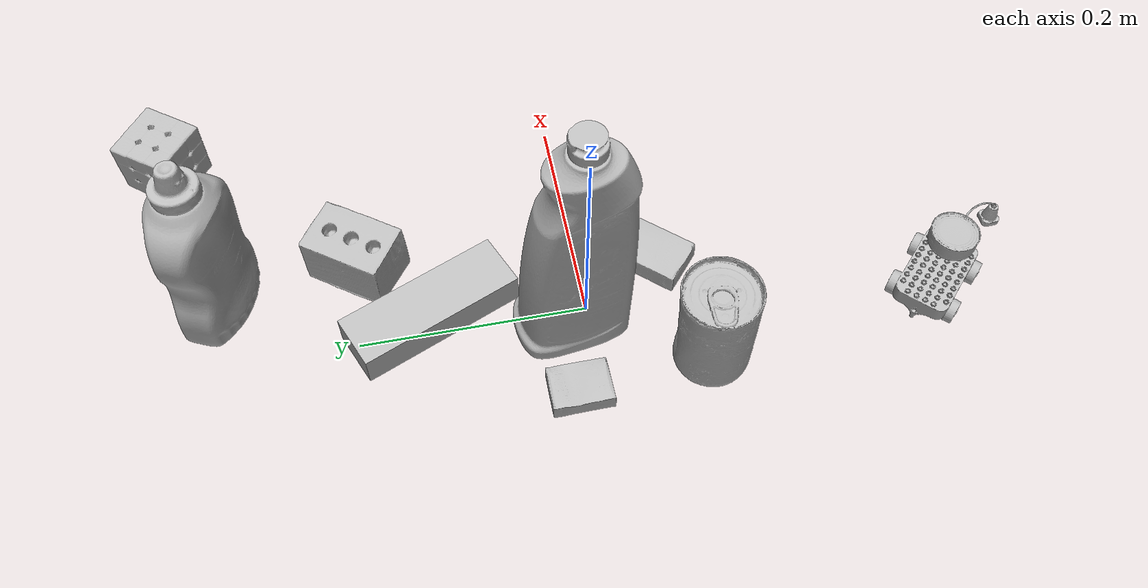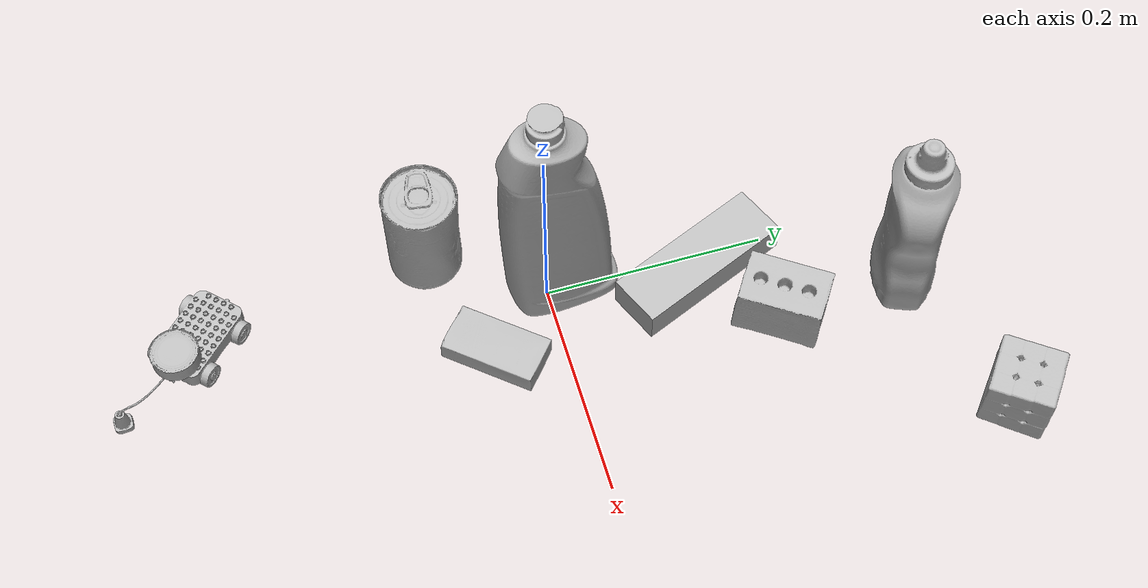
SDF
<sdf version="1.4">
  <world name="default">
    <light name="light1" type="point">
      <pose>0 0 1 0 0 0</pose>
      <diffuse>3 3 3 1</diffuse>
      <specular>3 3 3 1</specular>
    </light>
    <light name="light2" type="point">
      <pose>0 0.5 2 0 0 0</pose>
      <diffuse>1 1 1 1</diffuse>
      <specular>1 1 1 1</specular>
    </light>
    <light name="light3" type="point">
      <pose>0 0.5 2 0 0 0</pose>
      <diffuse>3 3 3 1</diffuse>
      <specular>3 3 3 1</specular>
    </light>
    <scene>
      <ambient>0.7 0.7 0.7</ambient>
    </scene>
    <model name="bottle1">
      <link name="link_bottle1">
        <collision name="default">
          <geometry>
            <mesh>
              <uri>model://bleach_cleanser/collision_meshes/collision.obj</uri>
              <scale>1.0 1.0 1.0</scale>
            </mesh>
          </geometry>
          <surface>
            <friction>
              <ode>
                <mu>0.5</mu>
                <mu2>0.5</mu2>
              </ode>
            </friction>
          <contact>
        <ode>
            <max_vel>0</max_vel>
            <min_depth>0.0001</min_depth>
            <kp>1e8</kp>
        </ode>
    </contact></surface>
        </collision>
        <visual name="default">
          <geometry>
            <mesh>
              <uri>model://bleach_cleanser/visual_meshes/visual.dae</uri>
              <scale>1.0 1.0 1.0</scale>
            </mesh>
          </geometry>
        </visual>
        <inertial>
          <mass>1.2697166204452515</mass>
          <pose>0.00012193183647468686 0.003783883061259985 -0.02442161738872528 -0.07381670616315505 0.00042011510954057825 -0.0068750724928957506</pose>
          <inertia>
            <ixx>0.0061798943</ixx>
            <iyy>0.0057587572</iyy>
            <izz>0.0010566014</izz>
            <ixy>0</ixy>
            <ixz>0</ixz>
            <iyz>0</iyz>
          </inertia>
        </inertial>
      </link>
      <pose>-0.010126622393727303 0.013779215514659882 0.12576501071453094 -0.0038936001023412072 0.0050664668124739895 -3.0170429102415453</pose>
    </model>
    <model name="bottle2">
      <link name="link_bottle2">
        <collision name="default">
          <geometry>
            <mesh>
              <uri>model://mustard_bottle/collision_meshes/collision.obj</uri>
              <scale>1.0 1.0 1.0</scale>
            </mesh>
          </geometry>
          <surface>
            <friction>
              <ode>
                <mu>0.5</mu>
                <mu2>0.5</mu2>
              </ode>
            </friction>
          <contact>
        <ode>
            <max_vel>0</max_vel>
            <min_depth>0.0001</min_depth>
            <kp>1e8</kp>
        </ode>
    </contact></surface>
        </collision>
        <visual name="default">
          <geometry>
            <mesh>
              <uri>model://mustard_bottle/visual_meshes/visual.dae</uri>
              <scale>1.0 1.0 1.0</scale>
            </mesh>
          </geometry>
        </visual>
        <inertial>
          <mass>0.7653017640113831</mass>
          <pose>0.000503245391882956 -0.00015647402324248105 -0.01747579500079155 0.0004182327658992807 0.0009465785893850277 0.024853714910462506</pose>
          <inertia>
            <ixx>0.0021251384</ixx>
            <iyy>0.0018646289</iyy>
            <izz>0.0005600813</izz>
            <ixy>0</ixy>
            <ixz>0</ixz>
            <iyz>0</iyz>
          </inertia>
        </inertial>
      </link>
      <pose>0.06598885357379913 0.3121599555015564 0.09643352031707764 0.006019521603279028 -0.007301817521514456 1.1546228966295433</pose>
    </model>
    <model name="toy1">
      <link name="link_toy1">
        <collision name="default">
          <geometry>
            <mesh>
              <uri>model://g_lego_duplo/collision_meshes/collision.obj</uri>
              <scale>0.5 0.5 0.5</scale>
            </mesh>
          </geometry>
          <surface>
            <friction>
              <ode>
                <mu>0.5</mu>
                <mu2>0.5</mu2>
              </ode>
            </friction>
          <contact>
        <ode>
            <max_vel>0</max_vel>
            <min_depth>0.0001</min_depth>
            <kp>1e8</kp>
        </ode>
    </contact></surface>
        </collision>
        <visual name="default">
          <geometry>
            <mesh>
              <uri>model://g_lego_duplo/visual_meshes/visual.dae</uri>
              <scale>0.5 0.5 0.5</scale>
            </mesh>
          </geometry>
        </visual>
        <inertial>
          <mass>0.058442164212465286</mass>
          <pose>-0.025023842230439186 0.0008777315961197019 0.0019403378246352077 0.010962970283690966 0.0381082459421261 -0.09653034831594848</pose>
          <inertia>
            <ixx>2.1170836e-05</ixx>
            <iyy>6.4006235e-05</iyy>
            <izz>8.007422e-05</izz>
            <ixy>0</ixy>
            <ixz>0</ixz>
            <iyz>0</iyz>
          </inertia>
        </inertial>
      </link>
      <pose>-0.012870648875832558 -0.33002692461013794 0.01496315561234951 0.002114414267093171 -0.0041294969772339265 -0.7783602645724228</pose>
    </model>
    <model name="toy2">
      <link name="link_toy2">
        <collision name="default">
          <geometry>
            <mesh>
              <uri>model://foam_brick/collision_meshes/collision.obj</uri>
              <scale>1.0 1.0 1.0</scale>
            </mesh>
          </geometry>
          <surface>
            <friction>
              <ode>
                <mu>0.5</mu>
                <mu2>0.5</mu2>
              </ode>
            </friction>
          <contact>
        <ode>
            <max_vel>0</max_vel>
            <min_depth>0.0001</min_depth>
            <kp>1e8</kp>
        </ode>
    </contact></surface>
        </collision>
        <visual name="default">
          <geometry>
            <mesh>
              <uri>model://foam_brick/visual_meshes/visual.dae</uri>
              <scale>1.0 1.0 1.0</scale>
            </mesh>
          </geometry>
        </visual>
        <inertial>
          <mass>0.20487983524799347</mass>
          <pose>-0.0002522472059354186 0.0003458437859080732 -0.0002532101352699101 -0.2940200921298176 0.01727444945267686 -0.0007449878655710941</pose>
          <inertia>
            <ixx>8.9495355e-05</ixx>
            <iyy>0.0001428839</iyy>
            <izz>0.00014469978</izz>
            <ixy>0</ixy>
            <ixz>0</ixz>
            <iyz>0</iyz>
          </inertia>
        </inertial>
      </link>
      <pose>0.07939611375331879 0.19297818839550018 0.02592281810939312 0.013416884201391978 0.004152964146493502 -2.178748667792243</pose>
    </model>
    <model name="can1">
      <link name="link_can1">
        <collision name="default">
          <geometry>
            <mesh>
              <uri>model://tuna_fish_can/collision_meshes/collision.obj</uri>
              <scale>0.5 0.5 0.5</scale>
            </mesh>
          </geometry>
          <surface>
            <friction>
              <ode>
                <mu>0.5</mu>
                <mu2>0.5</mu2>
              </ode>
            </friction>
          <contact>
        <ode>
            <max_vel>0</max_vel>
            <min_depth>0.0001</min_depth>
            <kp>1e8</kp>
        </ode>
    </contact></surface>
        </collision>
        <visual name="default">
          <geometry>
            <mesh>
              <uri>model://tuna_fish_can/visual_meshes/visual.dae</uri>
              <scale>0.5 0.5 0.5</scale>
            </mesh>
          </geometry>
        </visual>
        <inertial>
          <mass>0.012491201050579548</mass>
          <pose>-2.036202567978762e-05 -7.256427124957554e-06 -0.0005269025568850338 -0.0017944782936896576 0.0001716245920406042 0.24054207470378652</pose>
          <inertia>
            <ixx>1.6888293e-06</ixx>
            <iyy>1.6817903e-06</iyy>
            <izz>2.889828e-06</izz>
            <ixy>0</ixy>
            <ixz>0</ixz>
            <iyz>0</iyz>
          </inertia>
        </inertial>
      </link>
      <pose>-0.00987192615866661 -0.3283507823944092 0.035350505262613297 -0.014242776557327834 -0.005279317546227557 -2.465050800044654</pose>
    </model>
    <model name="can2">
      <link name="link_can2">
        <collision name="default">
          <geometry>
            <mesh>
              <uri>model://tomato_soup_can/collision_meshes/collision.obj</uri>
              <scale>1.0 1.0 1.0</scale>
            </mesh>
          </geometry>
          <surface>
            <friction>
              <ode>
                <mu>0.5</mu>
                <mu2>0.5</mu2>
              </ode>
            </friction>
          <contact>
        <ode>
            <max_vel>0</max_vel>
            <min_depth>0.0001</min_depth>
            <kp>1e8</kp>
        </ode>
    </contact></surface>
        </collision>
        <visual name="default">
          <geometry>
            <mesh>
              <uri>model://tomato_soup_can/visual_meshes/visual.dae</uri>
              <scale>1.0 1.0 1.0</scale>
            </mesh>
          </geometry>
        </visual>
        <inertial>
          <mass>0.1827235370874405</mass>
          <pose>0.00012652271834667772 0.00010805515921674669 -0.0017973986687138677 0.007020070640758328 0.00042299385100205743 -0.009903366123441316</pose>
          <inertia>
            <ixx>0.00020034082</ixx>
            <iyy>0.00019918295</iyy>
            <izz>0.00010383482</izz>
            <ixy>0</ixy>
            <ixz>0</ixz>
            <iyz>0</iyz>
          </inertia>
        </inertial>
      </link>
      <pose>-0.0653592050075531 -0.09524068981409073 0.05127400904893875 -1.4131843500656296e-07 -4.5130561309917025e-07 -2.010822295249343</pose>
    </model>
    <model name="box1">
      <link name="link_box1">
        <collision name="default">
          <geometry>
            <mesh>
              <uri>model://jenga/collision_meshes/collision.obj</uri>
              <scale>1.0 1.0 1.0</scale>
            </mesh>
          </geometry>
          <surface>
            <friction>
              <ode>
                <mu>0.5</mu>
                <mu2>0.5</mu2>
              </ode>
            </friction>
          <contact>
        <ode>
            <max_vel>0</max_vel>
            <min_depth>0.0001</min_depth>
            <kp>1e8</kp>
        </ode>
    </contact></surface>
        </collision>
        <visual name="default">
          <geometry>
            <mesh>
              <uri>model://jenga/visual_meshes/visual.dae</uri>
              <scale>1.0 1.0 1.0</scale>
            </mesh>
          </geometry>
        </visual>
        <inertial>
          <mass>0.23032541573047638</mass>
          <pose>-2.502855807051674e-07 -0.00010250010382151231 -4.0923401684267446e-05 0.0 -7.342154049184251e-07 0.0</pose>
          <inertia>
            <ixx>6.3736625e-05</ixx>
            <iyy>0.00043187768</iyy>
            <izz>0.00046106614</izz>
            <ixy>0</ixy>
            <ixz>0</ixz>
            <iyz>0</iyz>
          </inertia>
        </inertial>
      </link>
      <pose>0.01697315089404583 0.13508690893650055 0.014999994076788425 2.083216683806613e-08 -1.5180953926314788e-08 1.9751543613209344</pose>
    </model>
    <model name="box2">
      <link name="link_box2">
        <collision name="default">
          <geometry>
            <mesh>
              <uri>model://cracker_box/collision_meshes/collision.obj</uri>
              <scale>0.25 0.25 0.25</scale>
            </mesh>
          </geometry>
          <surface>
            <friction>
              <ode>
                <mu>0.5</mu>
                <mu2>0.5</mu2>
              </ode>
            </friction>
          <contact>
        <ode>
            <max_vel>0</max_vel>
            <min_depth>0.0001</min_depth>
            <kp>1e8</kp>
        </ode>
    </contact></surface>
        </collision>
        <visual name="default">
          <geometry>
            <mesh>
              <uri>model://cracker_box/visual_meshes/visual.dae</uri>
              <scale>0.25 0.25 0.25</scale>
            </mesh>
          </geometry>
        </visual>
        <inertial>
          <mass>0.037928901612758636</mass>
          <pose>0.0002366034168517217 6.358561222441494e-05 -0.000425738311605528 -0.00031620771242973385 -0.011106489600347247 0.002546794536796529</pose>
          <inertia>
            <ixx>6.029637e-06</ixx>
            <iyy>9.956116e-06</iyy>
            <izz>1.420829e-05</izz>
            <ixy>0</ixy>
            <ixz>0</ixz>
            <iyz>0</iyz>
          </inertia>
        </inertial>
      </link>
      <pose>-0.0791444480419159 0.021404316648840904 0.009120451286435127 -0.011788063330334147 -0.007367160084233264 -1.5687062263558926</pose>
    </model>
    <model name="box3">
      <link name="link_box3">
        <collision name="default">
          <geometry>
            <mesh>
              <uri>model://sugar_box/collision_meshes/collision.obj</uri>
              <scale>0.5 0.5 0.5</scale>
            </mesh>
          </geometry>
          <surface>
            <friction>
              <ode>
                <mu>0.5</mu>
                <mu2>0.5</mu2>
              </ode>
            </friction>
          <contact>
        <ode>
            <max_vel>0</max_vel>
            <min_depth>0.0001</min_depth>
            <kp>1e8</kp>
        </ode>
    </contact></surface>
        </collision>
        <visual name="default">
          <geometry>
            <mesh>
              <uri>model://sugar_box/visual_meshes/visual.dae</uri>
              <scale>0.5 0.5 0.5</scale>
            </mesh>
          </geometry>
        </visual>
        <inertial>
          <mass>0.11577744781970978</mass>
          <pose>0.0005171863595023751 1.9245549992774613e-05 -0.00018182402709499002 -0.0004046260967602003 0.0010506636382171825 0.002615378323343388</pose>
          <inertia>
            <ixx>2.4116362e-05</ixx>
            <iyy>7.7949044e-05</iyy>
            <izz>9.3314295e-05</izz>
            <ixy>0</ixy>
            <ixz>0</ixz>
            <iyz>0</iyz>
          </inertia>
        </inertial>
      </link>
      <pose>0.04756936430931091 -0.0596548356115818 0.011399300768971443 0.0007754305868738377 -0.023433294558035247 0.8557498681044317</pose>
    </model>
    <model name="box4">
      <link name="link_box4">
        <collision name="default">
          <geometry>
            <mesh>
              <uri>model://rubiks_cube/collision_meshes/collision.obj</uri>
              <scale>1.0 1.0 1.0</scale>
            </mesh>
          </geometry>
          <surface>
            <friction>
              <ode>
                <mu>0.5</mu>
                <mu2>0.5</mu2>
              </ode>
            </friction>
          <contact>
        <ode>
            <max_vel>0</max_vel>
            <min_depth>0.0001</min_depth>
            <kp>1e8</kp>
        </ode>
    </contact></surface>
        </collision>
        <visual name="default">
          <geometry>
            <mesh>
              <uri>model://rubiks_cube/visual_meshes/visual.dae</uri>
              <scale>1.0 1.0 1.0</scale>
            </mesh>
          </geometry>
        </visual>
        <inertial>
          <mass>0.277982622385025</mass>
          <pose>2.6721041649580002e-05 5.2569666877388954e-05 -7.264316082000732e-06 -0.05467259342135701 -0.09814005995908277 -0.03445491653702878</pose>
          <inertia>
            <ixx>0.00015360407</ixx>
            <iyy>0.00015288773</iyy>
            <izz>0.00015487692</izz>
            <ixy>0</ixy>
            <ixz>0</ixz>
            <iyz>0</iyz>
          </inertia>
        </inertial>
      </link>
      <pose>0.22006802260875702 0.35991811752319336 0.02867894060909748 -5.337790297377626e-06 -1.961826384504942e-06 -2.213948866671449</pose>
    </model>
  <physics type="ode">
      <max_contacts>50</max_contacts>
      <ode>
        <solver>
          <type>quick</type>
          <iters>75</iters>
        </solver>
        <constraints>
          <contact_max_correcting_vel>0</contact_max_correcting_vel>
          <contact_surface_layer>0</contact_surface_layer>
        </constraints>
      </ode>
    </physics></world>
</sdf>
